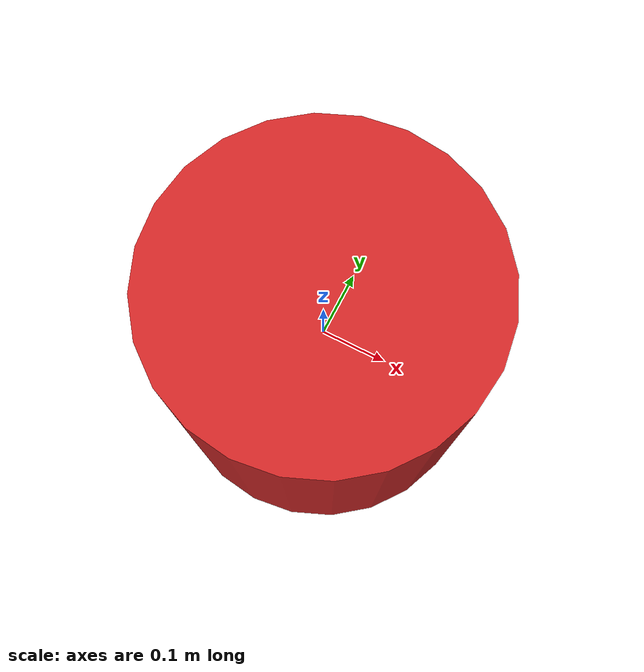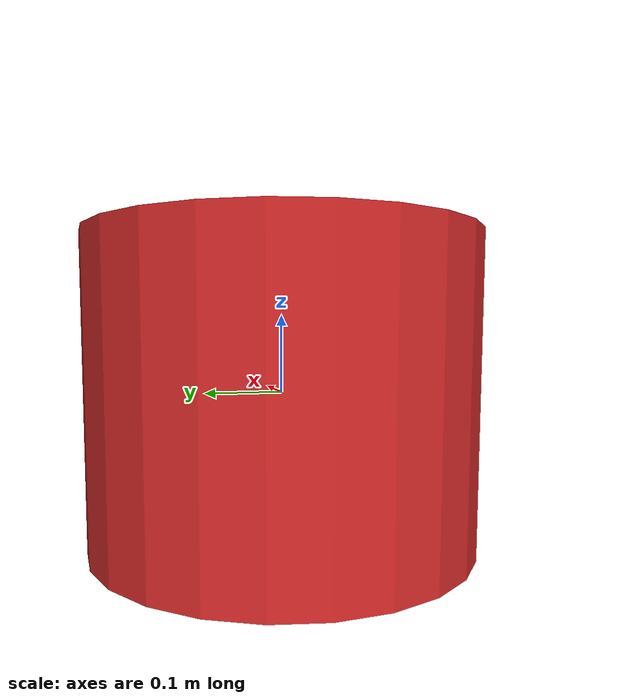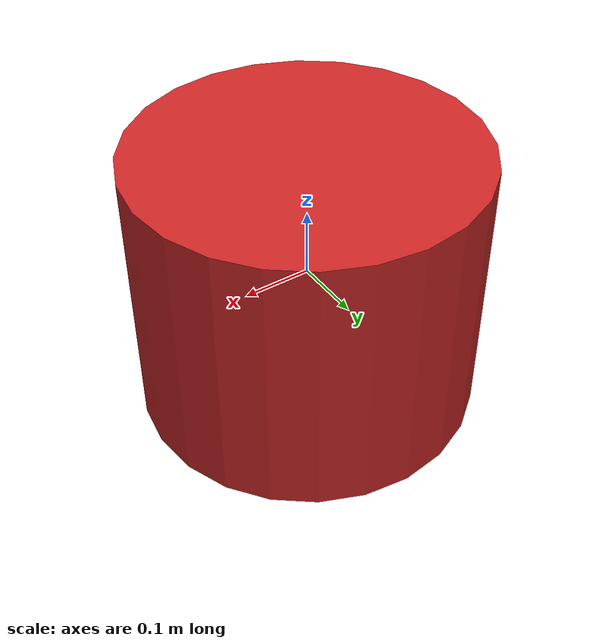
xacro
<robot name="cylinder_model" xmlns:xacro="http://ros.org/wiki/xacro">

  <xacro:arg name="cylinder_length" default="0.4"/>
  <xacro:arg name="cylinder_radius" default="0.25"/>

  <xacro:property name="cylinder_length" value="$(arg cylinder_length)" />
  <xacro:property name="cylinder_radius" value="$(arg cylinder_radius)" />

  <macro name="cylinder_inertia" params="m r h">
    <inertia  ixx="${m*(3*r*r+h*h)/12}" ixy = "0" ixz = "0"
      iyy="${m*(3*r*r+h*h)/12}" iyz = "0"
      izz="${m*r*r/2}"
    />
  </macro>

  <!-- root link, on the ground just below the model origin -->
  <link name="base_link">
      <origin xyz="0 0 0" rpy="0 0 0" />
  </link>

  <gazebo reference="base_link">
    <gravity>0</gravity>
    <material>
      Gazebo/Red
    </material>
  </gazebo>

  <joint name="base_link_joint" type="fixed">
    <gravity>0</gravity>
    <origin xyz="0.0 0 0" rpy="0 0 0" />
    <parent link="base_link"/>
    <child link="body_link" />
  </joint>

  <!-- the model -->
  <link name="body_link">
    <inertial>
      <mass value="0.1" />
      <origin xyz="0 0 0" />
      <inertia ixx="1.0" ixy="0.0" ixz="0.0"
        iyy="1.0" iyz="0.0"
        izz="1.0" />
    </inertial>
    <visual>
      <origin xyz="0 0 0" />
      <geometry>
        <cylinder length="$(arg cylinder_length)" radius="$(arg cylinder_radius)" />
      </geometry>
    </visual>
  </link>

  <gazebo reference="body_link">
    <gravity>0</gravity>
    <material>
      Gazebo/Red
    </material>
  </gazebo>

  <gazebo>
    <plugin name="object_controller" filename="libgazebo_ros_planar_move.so">
      <commandTopic>cmd_vel</commandTopic>
      <odometryTopic>odom</odometryTopic>
      <odometryFrame>odom</odometryFrame>
      <odometryRate>20.0</odometryRate>
      <robotBaseFrame>base_link</robotBaseFrame>
    </plugin>
  </gazebo>

</robot>
